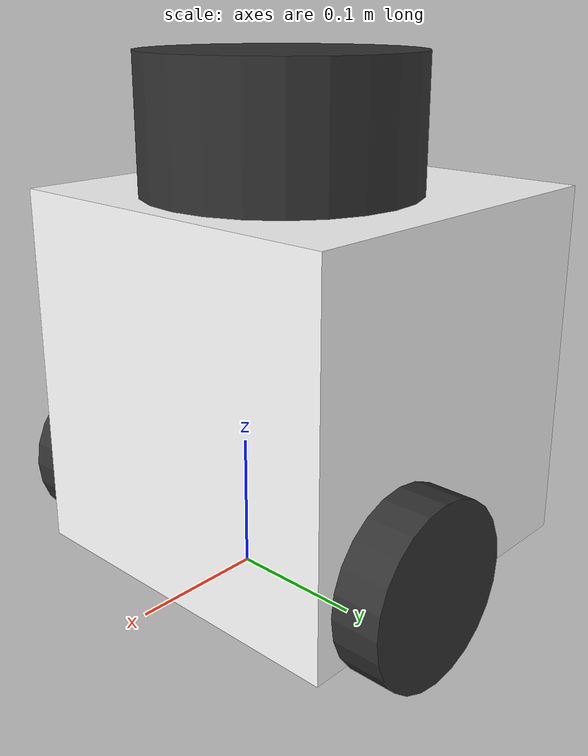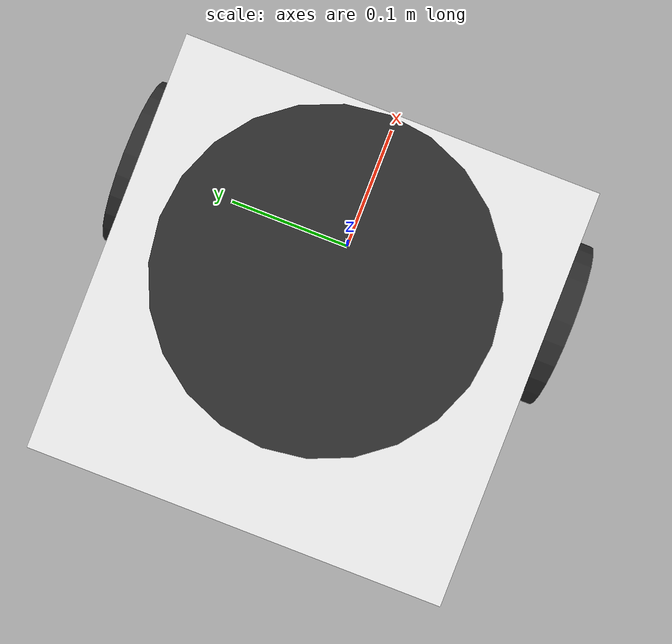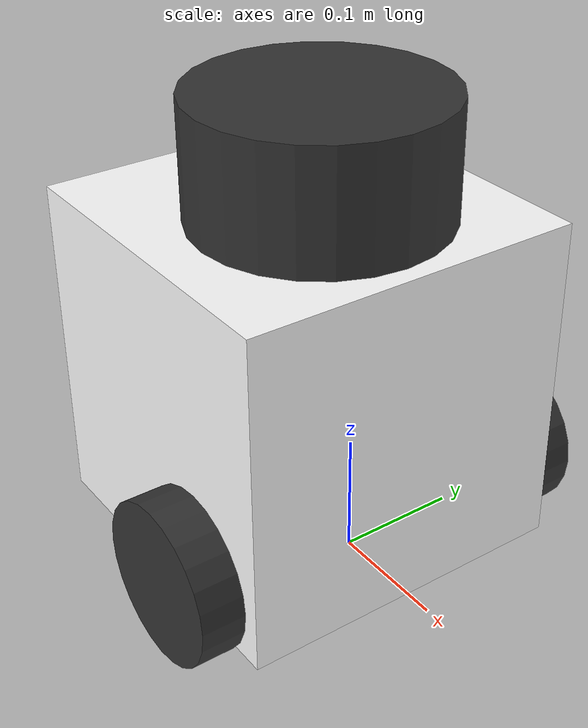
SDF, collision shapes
<?xml version="1.0" ?>
<sdf version="1.5">
  <model name="turtlebot3_burger_x2">
    <pose>0.0 0.0 0.0 0.0 0.0 0.0</pose>

    <link name="base_footprint"/>

    <link name="base_link">
      <inertial>
        <pose>-0.064 0 0.140 0 0 0</pose>
        <inertia>
          <ixx>7.2397393e-01</ixx>
          <ixy>4.686399e-10</ixy>
          <ixz>-1.09525703e-08</ixz>
          <iyy>7.2397393e-01</iyy>
          <iyz>2.8582649e-09</iyz>
          <izz>6.53050163e-01</izz>
        </inertia>
        <mass>8.2573504e-01</mass>
      </inertial>
      <collision name="base_collision">
        <pose>-0.064 0 0.140 0 0 0</pose>
        <geometry>
          <box>
            <size>0.280 0.280 0.280</size>
          </box>
        </geometry>
      </collision>
      <visual name="base_visual">
        <pose>-0.064 0 0 0 0 0</pose>
        <geometry>
          <mesh>
            <uri>model://turtlebot3_common/meshes/bases/burger_base.stl</uri>
            <scale>0.002 0.002 0.002</scale>
          </mesh>
        </geometry>
        <material>
          <ambient>1.0 1.0 1.0 1.0</ambient>
          <diffuse>1.0 1.0 1.0 1.0</diffuse>
        </material>
      </visual>

      <!-- 왼쪽 눈썹 -->
      <visual name="left_eyebrow">
        <pose>0.08 0.04 0.268 0 0 1.87</pose>
        <geometry>
          <box>
            <size>0.02 0.004 0.002</size>
          </box>
        </geometry>
        <material>
          <ambient>0.2 0.2 0.2 1.0</ambient>
          <diffuse>0.2 0.2 0.2 1.0</diffuse>
        </material>
      </visual>

      <!-- 왼쪽 눈 -->
      <visual name="left_eye">
        <pose>0.08 0.04 0.25 0 0 0</pose>
        <geometry>
          <sphere>
            <radius>0.015</radius>
          </sphere>
        </geometry>
        <material>
          <ambient>1.0 1.0 1.0 1.0</ambient>
          <diffuse>1.0 1.0 1.0 1.0</diffuse>
        </material>
      </visual>

      <!-- 오른쪽 눈썹 -->
      <visual name="right_eyebrow">
        <pose>0.08 -0.04 0.268 0 0 1.27</pose>
        <geometry>
          <box>
            <size>0.02 0.004 0.002</size>
          </box>
        </geometry>
        <material>
          <ambient>0.2 0.2 0.2 1.0</ambient>
          <diffuse>0.2 0.2 0.2 1.0</diffuse>
        </material>
      </visual>

      <!-- 오른쪽 눈 -->
      <visual name="right_eye">
        <pose>0.08 -0.04 0.25 0 0 0</pose>
        <geometry>
          <sphere>
            <radius>0.015</radius>
          </sphere>
        </geometry>
        <material>
          <ambient>1.0 1.0 1.0 1.0</ambient>
          <diffuse>1.0 1.0 1.0 1.0</diffuse>
        </material>
      </visual>

      <!-- 왼쪽 눈동자 -->
      <visual name="left_pupil">
        <pose>0.09 0.04 0.25 0 0 0</pose>
        <geometry>
          <sphere>
            <radius>0.008</radius>
          </sphere>
        </geometry>
        <material>
          <ambient>0.0 0.0 0.0 1.0</ambient>
          <diffuse>0.0 0.0 0.0 1.0</diffuse>
        </material>
      </visual>

      <!-- 오른쪽 눈동자 -->
      <visual name="right_pupil">
        <pose>0.09 -0.04 0.25 0 0 0</pose>
        <geometry>
          <sphere>
            <radius>0.008</radius>
          </sphere>
        </geometry>
        <material>
          <ambient>0.0 0.0 0.0 1.0</ambient>
          <diffuse>0.0 0.0 0.0 1.0</diffuse>
        </material>
      </visual>

      <!-- 웃는 입 (세모 모양) -->
      <visual name="mouth">
        <pose>0.085 0 0.21 0 0 0</pose>
        <geometry>
          <box>
            <size>0.02 0.03 0.003</size>
          </box>
        </geometry>
        <material>
          <ambient>1.0 0.5 0.5 1.0</ambient>
          <diffuse>1.0 0.5 0.5 1.0</diffuse>
        </material>
      </visual>

      <!-- 입 왼쪽 끝 -->
      <visual name="mouth_left">
        <pose>0.078 0.015 0.215 0 0 -0.785</pose>
        <geometry>
          <box>
            <size>0.015 0.003 0.003</size>
          </box>
        </geometry>
        <material>
          <ambient>1.0 0.5 0.5 1.0</ambient>
          <diffuse>1.0 0.5 0.5 1.0</diffuse>
        </material>
      </visual>

      <!-- 입 오른쪽 끝 -->
      <visual name="mouth_right">
        <pose>0.078 -0.015 0.215 0 0 0.785</pose>
        <geometry>
          <box>
            <size>0.015 0.003 0.003</size>
          </box>
        </geometry>
        <material>
          <ambient>1.0 0.5 0.5 1.0</ambient>
          <diffuse>1.0 0.5 0.5 1.0</diffuse>
        </material>
      </visual>

      <!-- 약상자 (파란색) -->
      <visual name="medicine_box">
        <pose>-0.04 0.0 0.1 0 0 0</pose>
        <geometry>
          <box>
            <size>0.24 0.2 0.16</size>
          </box>
        </geometry>
        <material>
          <ambient>0.2 0.4 0.8 1.0</ambient>
          <diffuse>0.2 0.4 0.8 1.0</diffuse>
        </material>
      </visual>

      <!-- 약상자 십자 표시 (세로) -->
      <visual name="medicine_cross_vertical">
        <pose>0.081 0 0.1 0 0 0</pose>
        <geometry>
          <box>
            <size>0.002 0.04 0.08</size>
          </box>
        </geometry>
        <material>
          <ambient>0.0 0.8 0.2 1.0</ambient>
          <diffuse>0.0 0.8 0.2 1.0</diffuse>
        </material>
      </visual>

      <!-- 약상자 십자 표시 (가로) -->
      <visual name="medicine_cross_horizontal">
        <pose>0.081 0 0.1 0 0 0</pose>
        <geometry>
          <box>
            <size>0.002 0.08 0.04</size>
          </box>
        </geometry>
        <material>
          <ambient>0.0 0.8 0.2 1.0</ambient>
          <diffuse>0.0 0.8 0.2 1.0</diffuse>
        </material>
      </visual>

    </link>

    <link name="imu_link">
      <sensor name="tb3_imu" type="imu">
        <always_on>true</always_on>
        <update_rate>200</update_rate>
        <imu>
          <angular_velocity>
            <x>
              <noise type="gaussian">
                <mean>0.0</mean>
                <stddev>2e-4</stddev>
              </noise>
            </x>
            <y>
              <noise type="gaussian">
                <mean>0.0</mean>
                <stddev>2e-4</stddev>
              </noise>
            </y>
            <z>
              <noise type="gaussian">
                <mean>0.0</mean>
                <stddev>2e-4</stddev>
              </noise>
            </z>
          </angular_velocity>
          <linear_acceleration>
            <x>
              <noise type="gaussian">
                <mean>0.0</mean>
                <stddev>1.7e-2</stddev>
              </noise>
            </x>
            <y>
              <noise type="gaussian">
                <mean>0.0</mean>
                <stddev>1.7e-2</stddev>
              </noise>
            </y>
            <z>
              <noise type="gaussian">
                <mean>0.0</mean>
                <stddev>1.7e-2</stddev>
              </noise>
            </z>
          </linear_acceleration>
        </imu>
        <plugin name="turtlebot3_imu" filename="libgazebo_ros_imu_sensor.so">
          <ros>
            <remapping>~/out:=imu</remapping>
          </ros>
        </plugin>
      </sensor>
    </link>

    <link name="base_scan">
      <inertial>
        <pose>-0.040 0 0.322 0 0 0</pose>
        <inertia>
          <ixx>0.001</ixx>
          <ixy>0.000</ixy>
          <ixz>0.000</ixz>
          <iyy>0.001</iyy>
          <iyz>0.000</iyz>
          <izz>0.001</izz>
        </inertia>
        <mass>0.114</mass>
      </inertial>
      <collision name="lidar_sensor_collision">
        <pose>-0.040 0 0.322 0 0 0</pose>
        <geometry>
          <cylinder>
            <radius>0.1016</radius>
            <length>0.110</length>
          </cylinder>
        </geometry>
      </collision>
      <visual name="lidar_sensor_visual">
        <pose>-0.064 0 0.342 0 0 0</pose>
        <geometry>
          <mesh>
            <uri>model://turtlebot3_common/meshes/sensors/lds.stl</uri>
            <scale>0.002 0.002 0.002</scale>
          </mesh>
        </geometry>
        <material>
          <ambient>0.2 0.2 0.2 1.0</ambient>
          <diffuse>0.2 0.2 0.2 1.0</diffuse>
        </material>
      </visual>
      <sensor name="hls_lfcd_lds" type="ray">
        <always_on>true</always_on>
        <visualize>true</visualize>
        <pose>-0.064 0 0.342 0 0 0</pose>
        <update_rate>5</update_rate>
        <ray>
          <scan>
            <horizontal>
              <samples>360</samples>
              <resolution>1.000000</resolution>
              <min_angle>0.000000</min_angle>
              <max_angle>6.280000</max_angle>
            </horizontal>
          </scan>
          <range>
            <min>0.240000</min>
            <max>8.0</max>
            <resolution>0.015000</resolution>
          </range>
          <noise>
            <type>gaussian</type>
            <mean>0.0</mean>
            <stddev>0.01</stddev>
          </noise>
        </ray>
        <plugin name="turtlebot3_laserscan" filename="libgazebo_ros_ray_sensor.so">
          <ros>
            <remapping>~/out:=scan</remapping>
          </ros>
          <output_type>sensor_msgs/LaserScan</output_type>
          <frame_name>base_scan</frame_name>
        </plugin>
      </sensor>

      <!-- 1인칭 카메라 센서 -->
      <sensor name="camera" type="camera">
        <always_on>true</always_on>
        <update_rate>30</update_rate>
        <pose>0.08 0 0.25 0 0 0</pose>
        <camera>
          <horizontal_fov>1.396</horizontal_fov>
          <image>
            <width>640</width>
            <height>480</height>
            <format>R8G8B8</format>
          </image>
          <clip>
            <near>0.02</near>
            <far>300</far>
          </clip>
          <noise>
            <type>gaussian</type>
            <mean>0.0</mean>
            <stddev>0.007</stddev>
          </noise>
        </camera>
        <plugin name="camera_controller" filename="libgazebo_ros_camera.so">
          <ros>
            <remapping>image_raw:=camera/image_raw</remapping>
            <remapping>camera_info:=camera/camera_info</remapping>
          </ros>
          <camera_name>camera</camera_name>
          <frame_name>camera_link</frame_name>
          <hack_baseline>0.07</hack_baseline>
        </plugin>
      </sensor>
    </link>

    <link name="wheel_left_link">
      <inertial>
        <pose>0 0.16 0.046 -1.57 0 0</pose>
        <inertia>
          <ixx>1.8158194e-03</ixx>
          <ixy>-9.3392e-12</ixy>
          <ixz>1.04909e-11</ixz>
          <iyy>3.2922126e-03</iyy>
          <iyz>5.75694e-11</iyz>
          <izz>1.8158194e-03</izz>
        </inertia>
        <mass>2.8498940e-02</mass>
      </inertial>
      <collision name="wheel_left_collision">
        <pose>0 0.16 0.046 -1.57 0 0</pose>
        <geometry>
          <cylinder>
            <radius>0.066</radius>
            <length>0.036</length>
          </cylinder>
        </geometry>
        <surface>
          <friction>
            <ode>
              <mu>100000.0</mu>
              <mu2>100000.0</mu2>
              <fdir1>0 0 0</fdir1>
              <slip1>0.0</slip1>
              <slip2>0.0</slip2>
            </ode>
          </friction>
          <contact>
            <ode>
              <soft_cfm>0</soft_cfm>
              <soft_erp>0.2</soft_erp>
              <kp>1e+5</kp>
              <kd>1</kd>
              <max_vel>0.01</max_vel>
              <min_depth>0.001</min_depth>
            </ode>
          </contact>
        </surface>
      </collision>
      <visual name="wheel_left_visual">
        <pose>0 0.16 0.046 0 0 0</pose>
        <geometry>
          <mesh>
            <uri>model://turtlebot3_common/meshes/wheels/left_tire.stl</uri>
            <scale>0.002 0.002 0.002</scale>
          </mesh>
        </geometry>
        <material>
          <ambient>0.2 0.2 0.2 1.0</ambient>
          <diffuse>0.2 0.2 0.2 1.0</diffuse>
        </material>
      </visual>
    </link>

    <link name="wheel_right_link">
      <inertial>
        <pose>0.0 -0.16 0.046 -1.57 0 0</pose>
        <inertia>
          <ixx>1.8158194e-03</ixx>
          <ixy>-9.3392e-12</ixy>
          <ixz>1.04909e-11</ixz>
          <iyy>3.2922126e-03</iyy>
          <iyz>5.75694e-11</iyz>
          <izz>1.8158194e-03</izz>
        </inertia>
        <mass>2.8498940e-02</mass>
      </inertial>
      <collision name="wheel_right_collision">
        <pose>0.0 -0.16 0.046 -1.57 0 0</pose>
        <geometry>
          <cylinder>
            <radius>0.066</radius>
            <length>0.036</length>
          </cylinder>
        </geometry>
        <surface>
          <friction>
            <ode>
              <mu>100000.0</mu>
              <mu2>100000.0</mu2>
              <fdir1>0 0 0</fdir1>
              <slip1>0.0</slip1>
              <slip2>0.0</slip2>
            </ode>
          </friction>
          <contact>
            <ode>
              <soft_cfm>0</soft_cfm>
              <soft_erp>0.2</soft_erp>
              <kp>1e+5</kp>
              <kd>1</kd>
              <max_vel>0.01</max_vel>
              <min_depth>0.001</min_depth>
            </ode>
          </contact>
        </surface>
      </collision>
      <visual name="wheel_right_visual">
        <pose>0.0 -0.16 0.046 0 0 0</pose>
        <geometry>
          <mesh>
            <uri>model://turtlebot3_common/meshes/wheels/right_tire.stl</uri>
            <scale>0.002 0.002 0.002</scale>
          </mesh>
        </geometry>
        <material>
          <ambient>0.2 0.2 0.2 1.0</ambient>
          <diffuse>0.2 0.2 0.2 1.0</diffuse>
        </material>
      </visual>
    </link>

    <link name='caster_back_link'>
      <pose>-0.162 0 -0.008 -1.57 0 0</pose>
      <inertial>
        <mass>0.005</mass>
        <inertia>
          <ixx>0.001</ixx>
          <ixy>0.000</ixy>
          <ixz>0.000</ixz>
          <iyy>0.001</iyy>
          <iyz>0.000</iyz>
          <izz>0.001</izz>
        </inertia>
      </inertial>
      <collision name='collision'>
        <geometry>
          <sphere>
            <radius>0.010000</radius>
          </sphere>
        </geometry>
        <surface>
          <contact>
            <ode>
              <soft_cfm>0</soft_cfm>
              <soft_erp>0.2</soft_erp>
              <kp>1e+5</kp>
              <kd>1</kd>
              <max_vel>0.01</max_vel>
              <min_depth>0.001</min_depth>
            </ode>
          </contact>
        </surface>
      </collision>
    </link>

    <joint name="base_joint" type="fixed">
      <parent>base_footprint</parent>
      <child>base_link</child>
      <pose>0.0 0.0 0.020 0 0 0</pose>
    </joint>
    <joint name="wheel_left_joint" type="revolute">
      <parent>base_link</parent>
      <child>wheel_left_link</child>
      <pose>0.0 0.16 0.046 -1.57 0 0</pose>
      <axis>
        <xyz>0 0 1</xyz>
      </axis>
    </joint>
    <joint name="wheel_right_joint" type="revolute">
      <parent>base_link</parent>
      <child>wheel_right_link</child>
      <pose>0.0 -0.16 0.046 -1.57 0 0</pose>
      <axis>
        <xyz>0 0 1</xyz>
      </axis>
    </joint>
    <joint name='caster_back_joint' type='ball'>
      <parent>base_link</parent>
      <child>caster_back_link</child>
    </joint>
    <joint name="imu_joint" type="fixed">
      <parent>base_link</parent>
      <child>imu_link</child>
      <pose>-0.064 0 0.136 0 0 0</pose>
      <axis>
        <xyz>0 0 1</xyz>
      </axis>
    </joint>
    <joint name="lidar_joint" type="fixed">
      <parent>base_link</parent>
      <child>base_scan</child>
      <pose>-0.064 0 0.342 0 0 0</pose>
      <axis>
        <xyz>0 0 1</xyz>
      </axis>
    </joint>

    <plugin name="turtlebot3_diff_drive" filename="libgazebo_ros_diff_drive.so">
      <ros></ros>
      <update_rate>30</update_rate>
      <left_joint>wheel_left_joint</left_joint>
      <right_joint>wheel_right_joint</right_joint>
      <wheel_separation>0.320</wheel_separation>
      <wheel_diameter>0.132</wheel_diameter>
      <max_wheel_torque>40</max_wheel_torque>
      <max_wheel_acceleration>2.0</max_wheel_acceleration>
      <command_topic>cmd_vel</command_topic>
      <publish_odom>true</publish_odom>
      <publish_odom_tf>true</publish_odom_tf>
      <publish_wheel_tf>false</publish_wheel_tf>
      <odometry_topic>odom</odometry_topic>
      <odometry_frame>odom</odometry_frame>
      <robot_base_frame>base_footprint</robot_base_frame>
    </plugin>

    <plugin name="turtlebot3_joint_state" filename="libgazebo_ros_joint_state_publisher.so">
      <ros>
        <remapping>~/out:=joint_states</remapping>
      </ros>
      <update_rate>30</update_rate>
      <joint_name>wheel_left_joint</joint_name>
      <joint_name>wheel_right_joint</joint_name>
    </plugin>
  </model>
</sdf>
